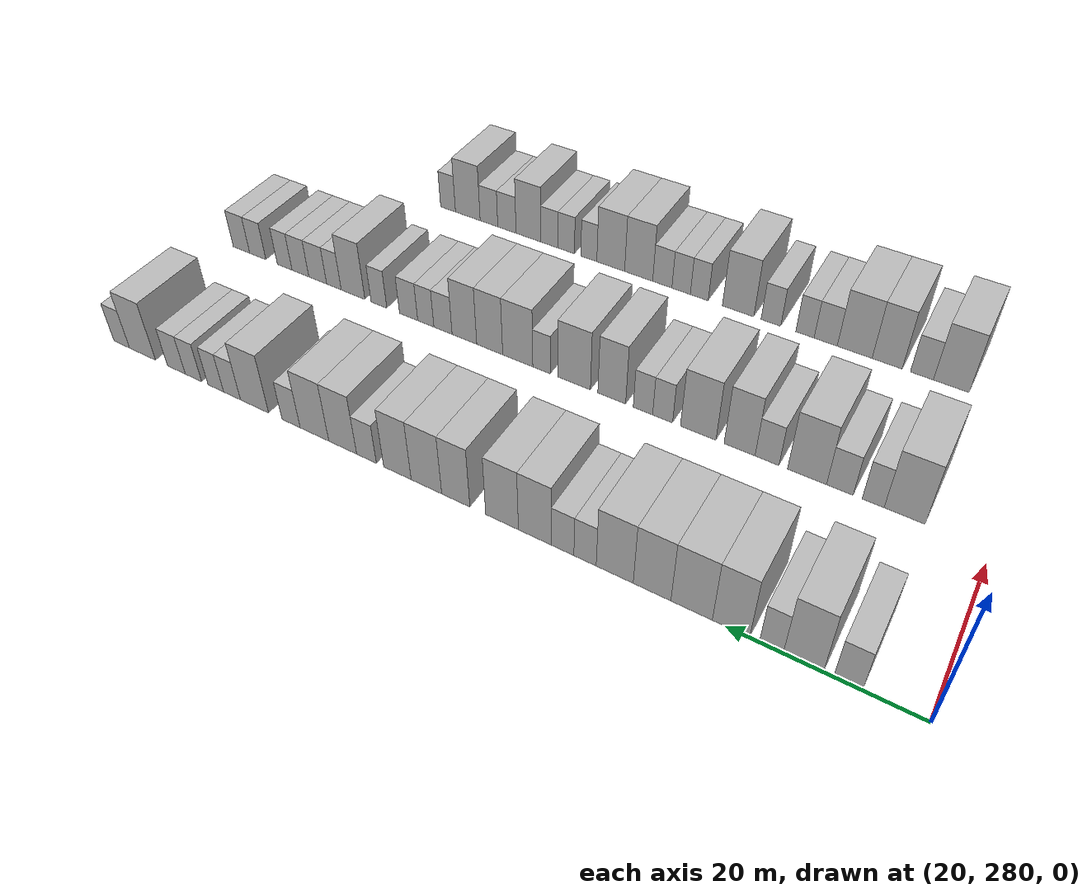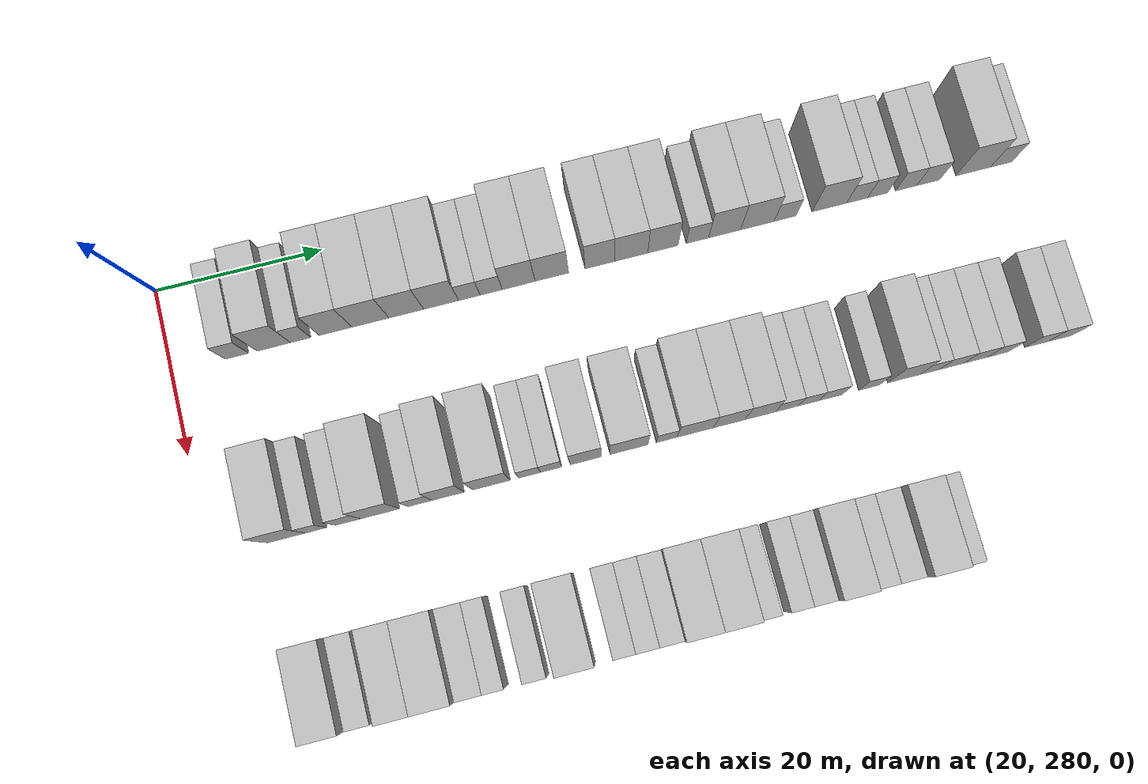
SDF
<sdf version="1.6">
 <world name="default">
  <model name="building_173">
   <static>1</static>
   <pose>25.0000 287.7490 0 0.000000 0.000000 0.000000</pose>
   <link name="link">
    <pose>0 0 3.00 0 0 0</pose>
    <collision name="collision"><geometry><box><size>10.0000 2.7724 6.0000</size></box></geometry></collision>
    <visual name="visual">
     <cast_shadows>0</cast_shadows>
     <geometry><box><size>10.0000 2.7724 6.0000</size></box></geometry>
     <material>
      <script>
       <uri>model://HANNAS_wall/materials/scripts</uri>
       <uri>model://HANNAS_wall/materials/textures</uri>
       <name>vrc/HANNAS_wall</name>
      </script>
     </material>
    </visual>
   </link>
  </model>
  <model name="building_174">
   <static>1</static>
   <pose>25.0000 292.1270 0 0.000000 0.000000 0.000000</pose>
   <link name="link">
    <pose>0 0 4.50 0 0 0</pose>
    <collision name="collision"><geometry><box><size>10.0000 3.9837 9.0000</size></box></geometry></collision>
    <visual name="visual">
     <cast_shadows>0</cast_shadows>
     <geometry><box><size>10.0000 3.9837 9.0000</size></box></geometry>
     <material>
      <script>
       <uri>model://HANNAS_wall/materials/scripts</uri>
       <uri>model://HANNAS_wall/materials/textures</uri>
       <name>vrc/HANNAS_wall</name>
      </script>
     </material>
    </visual>
   </link>
  </model>
  <model name="building_175">
   <static>1</static>
   <pose>25.0000 295.3282 0 0.000000 0.000000 0.000000</pose>
   <link name="link">
    <pose>0 0 3.00 0 0 0</pose>
    <collision name="collision"><geometry><box><size>10.0000 2.4185 6.0000</size></box></geometry></collision>
    <visual name="visual">
     <cast_shadows>0</cast_shadows>
     <geometry><box><size>10.0000 2.4185 6.0000</size></box></geometry>
     <material>
      <script>
       <uri>model://HANNAS_wall/materials/scripts</uri>
       <uri>model://HANNAS_wall/materials/textures</uri>
       <name>vrc/HANNAS_wall</name>
      </script>
     </material>
    </visual>
   </link>
  </model>
  <model name="building_176">
   <static>1</static>
   <pose>25.0000 299.4831 0 0.000000 0.000000 0.000000</pose>
   <link name="link">
    <pose>0 0 4.50 0 0 0</pose>
    <collision name="collision"><geometry><box><size>10.0000 3.8915 9.0000</size></box></geometry></collision>
    <visual name="visual">
     <cast_shadows>0</cast_shadows>
     <geometry><box><size>10.0000 3.8915 9.0000</size></box></geometry>
     <material>
      <script>
       <uri>model://HANNAS_wall/materials/scripts</uri>
       <uri>model://HANNAS_wall/materials/textures</uri>
       <name>vrc/HANNAS_wall</name>
      </script>
     </material>
    </visual>
   </link>
  </model>
  <model name="building_177">
   <static>1</static>
   <pose>25.0000 303.6539 0 0.000000 0.000000 0.000000</pose>
   <link name="link">
    <pose>0 0 4.50 0 0 0</pose>
    <collision name="collision"><geometry><box><size>10.0000 4.4500 9.0000</size></box></geometry></collision>
    <visual name="visual">
     <cast_shadows>0</cast_shadows>
     <geometry><box><size>10.0000 4.4500 9.0000</size></box></geometry>
     <material>
      <script>
       <uri>model://HANNAS_wall/materials/scripts</uri>
       <uri>model://HANNAS_wall/materials/textures</uri>
       <name>vrc/HANNAS_wall</name>
      </script>
     </material>
    </visual>
   </link>
  </model>
  <model name="building_178">
   <static>1</static>
   <pose>25.0000 307.9587 0 0.000000 0.000000 0.000000</pose>
   <link name="link">
    <pose>0 0 4.50 0 0 0</pose>
    <collision name="collision"><geometry><box><size>10.0000 4.1596 9.0000</size></box></geometry></collision>
    <visual name="visual">
     <cast_shadows>0</cast_shadows>
     <geometry><box><size>10.0000 4.1596 9.0000</size></box></geometry>
     <material>
      <script>
       <uri>model://HANNAS_wall/materials/scripts</uri>
       <uri>model://HANNAS_wall/materials/textures</uri>
       <name>vrc/HANNAS_wall</name>
      </script>
     </material>
    </visual>
   </link>
  </model>
  <model name="building_179">
   <static>1</static>
   <pose>25.0000 312.1446 0 0.000000 0.000000 0.000000</pose>
   <link name="link">
    <pose>0 0 4.50 0 0 0</pose>
    <collision name="collision"><geometry><box><size>10.0000 4.2123 9.0000</size></box></geometry></collision>
    <visual name="visual">
     <cast_shadows>0</cast_shadows>
     <geometry><box><size>10.0000 4.2123 9.0000</size></box></geometry>
     <material>
      <script>
       <uri>model://HANNAS_wall/materials/scripts</uri>
       <uri>model://HANNAS_wall/materials/textures</uri>
       <name>vrc/HANNAS_wall</name>
      </script>
     </material>
    </visual>
   </link>
  </model>
  <model name="building_180">
   <static>1</static>
   <pose>25.0000 315.5453 0 0.000000 0.000000 0.000000</pose>
   <link name="link">
    <pose>0 0 3.00 0 0 0</pose>
    <collision name="collision"><geometry><box><size>10.0000 2.5890 6.0000</size></box></geometry></collision>
    <visual name="visual">
     <cast_shadows>0</cast_shadows>
     <geometry><box><size>10.0000 2.5890 6.0000</size></box></geometry>
     <material>
      <script>
       <uri>model://HANNAS_wall/materials/scripts</uri>
       <uri>model://HANNAS_wall/materials/textures</uri>
       <name>vrc/HANNAS_wall</name>
      </script>
     </material>
    </visual>
   </link>
  </model>
  <model name="building_181">
   <static>1</static>
   <pose>25.0000 318.1744 0 0.000000 0.000000 0.000000</pose>
   <link name="link">
    <pose>0 0 3.00 0 0 0</pose>
    <collision name="collision"><geometry><box><size>10.0000 2.6693 6.0000</size></box></geometry></collision>
    <visual name="visual">
     <cast_shadows>0</cast_shadows>
     <geometry><box><size>10.0000 2.6693 6.0000</size></box></geometry>
     <material>
      <script>
       <uri>model://HANNAS_wall/materials/scripts</uri>
       <uri>model://HANNAS_wall/materials/textures</uri>
       <name>vrc/HANNAS_wall</name>
      </script>
     </material>
    </visual>
   </link>
  </model>
  <model name="building_182">
   <static>1</static>
   <pose>25.0000 321.4915 0 0.000000 0.000000 0.000000</pose>
   <link name="link">
    <pose>0 0 4.50 0 0 0</pose>
    <collision name="collision"><geometry><box><size>10.0000 3.9650 9.0000</size></box></geometry></collision>
    <visual name="visual">
     <cast_shadows>0</cast_shadows>
     <geometry><box><size>10.0000 3.9650 9.0000</size></box></geometry>
     <material>
      <script>
       <uri>model://HANNAS_wall/materials/scripts</uri>
       <uri>model://HANNAS_wall/materials/textures</uri>
       <name>vrc/HANNAS_wall</name>
      </script>
     </material>
    </visual>
   </link>
  </model>
  <model name="building_183">
   <static>1</static>
   <pose>25.0000 325.5005 0 0.000000 0.000000 0.000000</pose>
   <link name="link">
    <pose>0 0 4.50 0 0 0</pose>
    <collision name="collision"><geometry><box><size>10.0000 4.0528 9.0000</size></box></geometry></collision>
    <visual name="visual">
     <cast_shadows>0</cast_shadows>
     <geometry><box><size>10.0000 4.0528 9.0000</size></box></geometry>
     <material>
      <script>
       <uri>model://HANNAS_wall/materials/scripts</uri>
       <uri>model://HANNAS_wall/materials/textures</uri>
       <name>vrc/HANNAS_wall</name>
      </script>
     </material>
    </visual>
   </link>
  </model>
  <model name="building_184">
   <static>1</static>
   <pose>25.0000 331.3357 0 0.000000 0.000000 0.000000</pose>
   <link name="link">
    <pose>0 0 4.50 0 0 0</pose>
    <collision name="collision"><geometry><box><size>10.0000 3.6177 9.0000</size></box></geometry></collision>
    <visual name="visual">
     <cast_shadows>0</cast_shadows>
     <geometry><box><size>10.0000 3.6177 9.0000</size></box></geometry>
     <material>
      <script>
       <uri>model://HANNAS_wall/materials/scripts</uri>
       <uri>model://HANNAS_wall/materials/textures</uri>
       <name>vrc/HANNAS_wall</name>
      </script>
     </material>
    </visual>
   </link>
  </model>
  <model name="building_185">
   <static>1</static>
   <pose>25.0000 335.1584 0 0.000000 0.000000 0.000000</pose>
   <link name="link">
    <pose>0 0 4.50 0 0 0</pose>
    <collision name="collision"><geometry><box><size>10.0000 4.0276 9.0000</size></box></geometry></collision>
    <visual name="visual">
     <cast_shadows>0</cast_shadows>
     <geometry><box><size>10.0000 4.0276 9.0000</size></box></geometry>
     <material>
      <script>
       <uri>model://HANNAS_wall/materials/scripts</uri>
       <uri>model://HANNAS_wall/materials/textures</uri>
       <name>vrc/HANNAS_wall</name>
      </script>
     </material>
    </visual>
   </link>
  </model>
  <model name="building_186">
   <static>1</static>
   <pose>25.0000 339.0192 0 0.000000 0.000000 0.000000</pose>
   <link name="link">
    <pose>0 0 4.50 0 0 0</pose>
    <collision name="collision"><geometry><box><size>10.0000 3.6942 9.0000</size></box></geometry></collision>
    <visual name="visual">
     <cast_shadows>0</cast_shadows>
     <geometry><box><size>10.0000 3.6942 9.0000</size></box></geometry>
     <material>
      <script>
       <uri>model://HANNAS_wall/materials/scripts</uri>
       <uri>model://HANNAS_wall/materials/textures</uri>
       <name>vrc/HANNAS_wall</name>
      </script>
     </material>
    </visual>
   </link>
  </model>
  <model name="building_187">
   <static>1</static>
   <pose>25.0000 343.2326 0 0.000000 0.000000 0.000000</pose>
   <link name="link">
    <pose>0 0 3.00 0 0 0</pose>
    <collision name="collision"><geometry><box><size>10.0000 2.7326 6.0000</size></box></geometry></collision>
    <visual name="visual">
     <cast_shadows>0</cast_shadows>
     <geometry><box><size>10.0000 2.7326 6.0000</size></box></geometry>
     <material>
      <script>
       <uri>model://HANNAS_wall/materials/scripts</uri>
       <uri>model://HANNAS_wall/materials/textures</uri>
       <name>vrc/HANNAS_wall</name>
      </script>
     </material>
    </visual>
   </link>
  </model>
  <model name="building_188">
   <static>1</static>
   <pose>25.0000 346.5632 0 0.000000 0.000000 0.000000</pose>
   <link name="link">
    <pose>0 0 4.50 0 0 0</pose>
    <collision name="collision"><geometry><box><size>10.0000 3.9285 9.0000</size></box></geometry></collision>
    <visual name="visual">
     <cast_shadows>0</cast_shadows>
     <geometry><box><size>10.0000 3.9285 9.0000</size></box></geometry>
     <material>
      <script>
       <uri>model://HANNAS_wall/materials/scripts</uri>
       <uri>model://HANNAS_wall/materials/textures</uri>
       <name>vrc/HANNAS_wall</name>
      </script>
     </material>
    </visual>
   </link>
  </model>
  <model name="building_189">
   <static>1</static>
   <pose>25.0000 350.5946 0 0.000000 0.000000 0.000000</pose>
   <link name="link">
    <pose>0 0 4.50 0 0 0</pose>
    <collision name="collision"><geometry><box><size>10.0000 4.1343 9.0000</size></box></geometry></collision>
    <visual name="visual">
     <cast_shadows>0</cast_shadows>
     <geometry><box><size>10.0000 4.1343 9.0000</size></box></geometry>
     <material>
      <script>
       <uri>model://HANNAS_wall/materials/scripts</uri>
       <uri>model://HANNAS_wall/materials/textures</uri>
       <name>vrc/HANNAS_wall</name>
      </script>
     </material>
    </visual>
   </link>
  </model>
  <model name="building_190">
   <static>1</static>
   <pose>25.0000 353.9999 0 0.000000 0.000000 0.000000</pose>
   <link name="link">
    <pose>0 0 3.00 0 0 0</pose>
    <collision name="collision"><geometry><box><size>10.0000 2.6763 6.0000</size></box></geometry></collision>
    <visual name="visual">
     <cast_shadows>0</cast_shadows>
     <geometry><box><size>10.0000 2.6763 6.0000</size></box></geometry>
     <material>
      <script>
       <uri>model://HANNAS_wall/materials/scripts</uri>
       <uri>model://HANNAS_wall/materials/textures</uri>
       <name>vrc/HANNAS_wall</name>
      </script>
     </material>
    </visual>
   </link>
  </model>
  <model name="building_191">
   <static>1</static>
   <pose>25.0000 359.4760 0 0.000000 0.000000 0.000000</pose>
   <link name="link">
    <pose>0 0 4.50 0 0 0</pose>
    <collision name="collision"><geometry><box><size>10.0000 4.2760 9.0000</size></box></geometry></collision>
    <visual name="visual">
     <cast_shadows>0</cast_shadows>
     <geometry><box><size>10.0000 4.2760 9.0000</size></box></geometry>
     <material>
      <script>
       <uri>model://HANNAS_wall/materials/scripts</uri>
       <uri>model://HANNAS_wall/materials/textures</uri>
       <name>vrc/HANNAS_wall</name>
      </script>
     </material>
    </visual>
   </link>
  </model>
  <model name="building_192">
   <static>1</static>
   <pose>25.0000 362.9268 0 0.000000 0.000000 0.000000</pose>
   <link name="link">
    <pose>0 0 3.00 0 0 0</pose>
    <collision name="collision"><geometry><box><size>10.0000 2.6256 6.0000</size></box></geometry></collision>
    <visual name="visual">
     <cast_shadows>0</cast_shadows>
     <geometry><box><size>10.0000 2.6256 6.0000</size></box></geometry>
     <material>
      <script>
       <uri>model://HANNAS_wall/materials/scripts</uri>
       <uri>model://HANNAS_wall/materials/textures</uri>
       <name>vrc/HANNAS_wall</name>
      </script>
     </material>
    </visual>
   </link>
  </model>
  <model name="building_193">
   <static>1</static>
   <pose>25.0000 365.4707 0 0.000000 0.000000 0.000000</pose>
   <link name="link">
    <pose>0 0 3.00 0 0 0</pose>
    <collision name="collision"><geometry><box><size>10.0000 2.4622 6.0000</size></box></geometry></collision>
    <visual name="visual">
     <cast_shadows>0</cast_shadows>
     <geometry><box><size>10.0000 2.4622 6.0000</size></box></geometry>
     <material>
      <script>
       <uri>model://HANNAS_wall/materials/scripts</uri>
       <uri>model://HANNAS_wall/materials/textures</uri>
       <name>vrc/HANNAS_wall</name>
      </script>
     </material>
    </visual>
   </link>
  </model>
  <model name="building_194">
   <static>1</static>
   <pose>25.0000 369.0168 0 0.000000 0.000000 0.000000</pose>
   <link name="link">
    <pose>0 0 3.00 0 0 0</pose>
    <collision name="collision"><geometry><box><size>10.0000 2.6300 6.0000</size></box></geometry></collision>
    <visual name="visual">
     <cast_shadows>0</cast_shadows>
     <geometry><box><size>10.0000 2.6300 6.0000</size></box></geometry>
     <material>
      <script>
       <uri>model://HANNAS_wall/materials/scripts</uri>
       <uri>model://HANNAS_wall/materials/textures</uri>
       <name>vrc/HANNAS_wall</name>
      </script>
     </material>
    </visual>
   </link>
  </model>
  <model name="building_195">
   <static>1</static>
   <pose>25.0000 371.7718 0 0.000000 0.000000 0.000000</pose>
   <link name="link">
    <pose>0 0 3.00 0 0 0</pose>
    <collision name="collision"><geometry><box><size>10.0000 2.8800 6.0000</size></box></geometry></collision>
    <visual name="visual">
     <cast_shadows>0</cast_shadows>
     <geometry><box><size>10.0000 2.8800 6.0000</size></box></geometry>
     <material>
      <script>
       <uri>model://HANNAS_wall/materials/scripts</uri>
       <uri>model://HANNAS_wall/materials/textures</uri>
       <name>vrc/HANNAS_wall</name>
      </script>
     </material>
    </visual>
   </link>
  </model>
  <model name="building_196">
   <static>1</static>
   <pose>25.0000 377.3931 0 0.000000 0.000000 0.000000</pose>
   <link name="link">
    <pose>0 0 4.50 0 0 0</pose>
    <collision name="collision"><geometry><box><size>10.0000 4.3626 9.0000</size></box></geometry></collision>
    <visual name="visual">
     <cast_shadows>0</cast_shadows>
     <geometry><box><size>10.0000 4.3626 9.0000</size></box></geometry>
     <material>
      <script>
       <uri>model://HANNAS_wall/materials/scripts</uri>
       <uri>model://HANNAS_wall/materials/textures</uri>
       <name>vrc/HANNAS_wall</name>
      </script>
     </material>
    </visual>
   </link>
  </model>
  <model name="building_197">
   <static>1</static>
   <pose>25.0000 380.9049 0 0.000000 0.000000 0.000000</pose>
   <link name="link">
    <pose>0 0 3.00 0 0 0</pose>
    <collision name="collision"><geometry><box><size>10.0000 2.6611 6.0000</size></box></geometry></collision>
    <visual name="visual">
     <cast_shadows>0</cast_shadows>
     <geometry><box><size>10.0000 2.6611 6.0000</size></box></geometry>
     <material>
      <script>
       <uri>model://HANNAS_wall/materials/scripts</uri>
       <uri>model://HANNAS_wall/materials/textures</uri>
       <name>vrc/HANNAS_wall</name>
      </script>
     </material>
    </visual>
   </link>
  </model>
  <model name="building_363">
   <static>1</static>
   <pose>47.0000 289.0571 0 0.000000 0.000000 0.000000</pose>
   <link name="link">
    <pose>0 0 4.50 0 0 0</pose>
    <collision name="collision"><geometry><box><size>10.0000 4.4173 9.0000</size></box></geometry></collision>
    <visual name="visual">
     <cast_shadows>0</cast_shadows>
     <geometry><box><size>10.0000 4.4173 9.0000</size></box></geometry>
     <material>
      <script>
       <uri>model://HANNAS_wall/materials/scripts</uri>
       <uri>model://HANNAS_wall/materials/textures</uri>
       <name>vrc/HANNAS_wall</name>
      </script>
     </material>
    </visual>
   </link>
  </model>
  <model name="building_364">
   <static>1</static>
   <pose>47.0000 292.4740 0 0.000000 0.000000 0.000000</pose>
   <link name="link">
    <pose>0 0 3.00 0 0 0</pose>
    <collision name="collision"><geometry><box><size>10.0000 2.4165 6.0000</size></box></geometry></collision>
    <visual name="visual">
     <cast_shadows>0</cast_shadows>
     <geometry><box><size>10.0000 2.4165 6.0000</size></box></geometry>
     <material>
      <script>
       <uri>model://HANNAS_wall/materials/scripts</uri>
       <uri>model://HANNAS_wall/materials/textures</uri>
       <name>vrc/HANNAS_wall</name>
      </script>
     </material>
    </visual>
   </link>
  </model>
  <model name="building_365">
   <static>1</static>
   <pose>47.0000 296.1783 0 0.000000 0.000000 0.000000</pose>
   <link name="link">
    <pose>0 0 3.00 0 0 0</pose>
    <collision name="collision"><geometry><box><size>10.0000 2.9923 6.0000</size></box></geometry></collision>
    <visual name="visual">
     <cast_shadows>0</cast_shadows>
     <geometry><box><size>10.0000 2.9923 6.0000</size></box></geometry>
     <material>
      <script>
       <uri>model://HANNAS_wall/materials/scripts</uri>
       <uri>model://HANNAS_wall/materials/textures</uri>
       <name>vrc/HANNAS_wall</name>
      </script>
     </material>
    </visual>
   </link>
  </model>
  <model name="building_366">
   <static>1</static>
   <pose>47.0000 299.9164 0 0.000000 0.000000 0.000000</pose>
   <link name="link">
    <pose>0 0 4.50 0 0 0</pose>
    <collision name="collision"><geometry><box><size>10.0000 4.4838 9.0000</size></box></geometry></collision>
    <visual name="visual">
     <cast_shadows>0</cast_shadows>
     <geometry><box><size>10.0000 4.4838 9.0000</size></box></geometry>
     <material>
      <script>
       <uri>model://HANNAS_wall/materials/scripts</uri>
       <uri>model://HANNAS_wall/materials/textures</uri>
       <name>vrc/HANNAS_wall</name>
      </script>
     </material>
    </visual>
   </link>
  </model>
  <model name="building_367">
   <static>1</static>
   <pose>47.0000 304.5761 0 0.000000 0.000000 0.000000</pose>
   <link name="link">
    <pose>0 0 3.00 0 0 0</pose>
    <collision name="collision"><geometry><box><size>10.0000 2.8357 6.0000</size></box></geometry></collision>
    <visual name="visual">
     <cast_shadows>0</cast_shadows>
     <geometry><box><size>10.0000 2.8357 6.0000</size></box></geometry>
     <material>
      <script>
       <uri>model://HANNAS_wall/materials/scripts</uri>
       <uri>model://HANNAS_wall/materials/textures</uri>
       <name>vrc/HANNAS_wall</name>
      </script>
     </material>
    </visual>
   </link>
  </model>
  <model name="building_368">
   <static>1</static>
   <pose>47.0000 307.8629 0 0.000000 0.000000 0.000000</pose>
   <link name="link">
    <pose>0 0 4.50 0 0 0</pose>
    <collision name="collision"><geometry><box><size>10.0000 3.7379 9.0000</size></box></geometry></collision>
    <visual name="visual">
     <cast_shadows>0</cast_shadows>
     <geometry><box><size>10.0000 3.7379 9.0000</size></box></geometry>
     <material>
      <script>
       <uri>model://HANNAS_wall/materials/scripts</uri>
       <uri>model://HANNAS_wall/materials/textures</uri>
       <name>vrc/HANNAS_wall</name>
      </script>
     </material>
    </visual>
   </link>
  </model>
  <model name="building_369">
   <static>1</static>
   <pose>47.0000 312.9374 0 0.000000 0.000000 0.000000</pose>
   <link name="link">
    <pose>0 0 4.50 0 0 0</pose>
    <collision name="collision"><geometry><box><size>10.0000 4.4110 9.0000</size></box></geometry></collision>
    <visual name="visual">
     <cast_shadows>0</cast_shadows>
     <geometry><box><size>10.0000 4.4110 9.0000</size></box></geometry>
     <material>
      <script>
       <uri>model://HANNAS_wall/materials/scripts</uri>
       <uri>model://HANNAS_wall/materials/textures</uri>
       <name>vrc/HANNAS_wall</name>
      </script>
     </material>
    </visual>
   </link>
  </model>
  <model name="building_370">
   <static>1</static>
   <pose>47.0000 317.4157 0 0.000000 0.000000 0.000000</pose>
   <link name="link">
    <pose>0 0 3.00 0 0 0</pose>
    <collision name="collision"><geometry><box><size>10.0000 2.5456 6.0000</size></box></geometry></collision>
    <visual name="visual">
     <cast_shadows>0</cast_shadows>
     <geometry><box><size>10.0000 2.5456 6.0000</size></box></geometry>
     <material>
      <script>
       <uri>model://HANNAS_wall/materials/scripts</uri>
       <uri>model://HANNAS_wall/materials/textures</uri>
       <name>vrc/HANNAS_wall</name>
      </script>
     </material>
    </visual>
   </link>
  </model>
  <model name="building_371">
   <static>1</static>
   <pose>47.0000 319.9426 0 0.000000 0.000000 0.000000</pose>
   <link name="link">
    <pose>0 0 3.00 0 0 0</pose>
    <collision name="collision"><geometry><box><size>10.0000 2.5083 6.0000</size></box></geometry></collision>
    <visual name="visual">
     <cast_shadows>0</cast_shadows>
     <geometry><box><size>10.0000 2.5083 6.0000</size></box></geometry>
     <material>
      <script>
       <uri>model://HANNAS_wall/materials/scripts</uri>
       <uri>model://HANNAS_wall/materials/textures</uri>
       <name>vrc/HANNAS_wall</name>
      </script>
     </material>
    </visual>
   </link>
  </model>
  <model name="building_372">
   <static>1</static>
   <pose>47.0000 324.0380 0 0.000000 0.000000 0.000000</pose>
   <link name="link">
    <pose>0 0 4.50 0 0 0</pose>
    <collision name="collision"><geometry><box><size>10.0000 3.6825 9.0000</size></box></geometry></collision>
    <visual name="visual">
     <cast_shadows>0</cast_shadows>
     <geometry><box><size>10.0000 3.6825 9.0000</size></box></geometry>
     <material>
      <script>
       <uri>model://HANNAS_wall/materials/scripts</uri>
       <uri>model://HANNAS_wall/materials/textures</uri>
       <name>vrc/HANNAS_wall</name>
      </script>
     </material>
    </visual>
   </link>
  </model>
  <model name="building_373">
   <static>1</static>
   <pose>47.0000 329.1186 0 0.000000 0.000000 0.000000</pose>
   <link name="link">
    <pose>0 0 4.50 0 0 0</pose>
    <collision name="collision"><geometry><box><size>10.0000 4.4787 9.0000</size></box></geometry></collision>
    <visual name="visual">
     <cast_shadows>0</cast_shadows>
     <geometry><box><size>10.0000 4.4787 9.0000</size></box></geometry>
     <material>
      <script>
       <uri>model://HANNAS_wall/materials/scripts</uri>
       <uri>model://HANNAS_wall/materials/textures</uri>
       <name>vrc/HANNAS_wall</name>
      </script>
     </material>
    </visual>
   </link>
  </model>
  <model name="building_374">
   <static>1</static>
   <pose>47.0000 333.5838 0 0.000000 0.000000 0.000000</pose>
   <link name="link">
    <pose>0 0 3.00 0 0 0</pose>
    <collision name="collision"><geometry><box><size>10.0000 2.4517 6.0000</size></box></geometry></collision>
    <visual name="visual">
     <cast_shadows>0</cast_shadows>
     <geometry><box><size>10.0000 2.4517 6.0000</size></box></geometry>
     <material>
      <script>
       <uri>model://HANNAS_wall/materials/scripts</uri>
       <uri>model://HANNAS_wall/materials/textures</uri>
       <name>vrc/HANNAS_wall</name>
      </script>
     </material>
    </visual>
   </link>
  </model>
  <model name="building_375">
   <static>1</static>
   <pose>47.0000 336.9564 0 0.000000 0.000000 0.000000</pose>
   <link name="link">
    <pose>0 0 4.50 0 0 0</pose>
    <collision name="collision"><geometry><box><size>10.0000 4.2934 9.0000</size></box></geometry></collision>
    <visual name="visual">
     <cast_shadows>0</cast_shadows>
     <geometry><box><size>10.0000 4.2934 9.0000</size></box></geometry>
     <material>
      <script>
       <uri>model://HANNAS_wall/materials/scripts</uri>
       <uri>model://HANNAS_wall/materials/textures</uri>
       <name>vrc/HANNAS_wall</name>
      </script>
     </material>
    </visual>
   </link>
  </model>
  <model name="building_376">
   <static>1</static>
   <pose>47.0000 340.9928 0 0.000000 0.000000 0.000000</pose>
   <link name="link">
    <pose>0 0 4.50 0 0 0</pose>
    <collision name="collision"><geometry><box><size>10.0000 3.7793 9.0000</size></box></geometry></collision>
    <visual name="visual">
     <cast_shadows>0</cast_shadows>
     <geometry><box><size>10.0000 3.7793 9.0000</size></box></geometry>
     <material>
      <script>
       <uri>model://HANNAS_wall/materials/scripts</uri>
       <uri>model://HANNAS_wall/materials/textures</uri>
       <name>vrc/HANNAS_wall</name>
      </script>
     </material>
    </visual>
   </link>
  </model>
  <model name="building_377">
   <static>1</static>
   <pose>47.0000 344.7109 0 0.000000 0.000000 0.000000</pose>
   <link name="link">
    <pose>0 0 4.50 0 0 0</pose>
    <collision name="collision"><geometry><box><size>10.0000 3.6570 9.0000</size></box></geometry></collision>
    <visual name="visual">
     <cast_shadows>0</cast_shadows>
     <geometry><box><size>10.0000 3.6570 9.0000</size></box></geometry>
     <material>
      <script>
       <uri>model://HANNAS_wall/materials/scripts</uri>
       <uri>model://HANNAS_wall/materials/textures</uri>
       <name>vrc/HANNAS_wall</name>
      </script>
     </material>
    </visual>
   </link>
  </model>
  <model name="building_378">
   <static>1</static>
   <pose>47.0000 347.9187 0 0.000000 0.000000 0.000000</pose>
   <link name="link">
    <pose>0 0 3.00 0 0 0</pose>
    <collision name="collision"><geometry><box><size>10.0000 2.7586 6.0000</size></box></geometry></collision>
    <visual name="visual">
     <cast_shadows>0</cast_shadows>
     <geometry><box><size>10.0000 2.7586 6.0000</size></box></geometry>
     <material>
      <script>
       <uri>model://HANNAS_wall/materials/scripts</uri>
       <uri>model://HANNAS_wall/materials/textures</uri>
       <name>vrc/HANNAS_wall</name>
      </script>
     </material>
    </visual>
   </link>
  </model>
  <model name="building_379">
   <static>1</static>
   <pose>47.0000 350.5357 0 0.000000 0.000000 0.000000</pose>
   <link name="link">
    <pose>0 0 3.00 0 0 0</pose>
    <collision name="collision"><geometry><box><size>10.0000 2.4753 6.0000</size></box></geometry></collision>
    <visual name="visual">
     <cast_shadows>0</cast_shadows>
     <geometry><box><size>10.0000 2.4753 6.0000</size></box></geometry>
     <material>
      <script>
       <uri>model://HANNAS_wall/materials/scripts</uri>
       <uri>model://HANNAS_wall/materials/textures</uri>
       <name>vrc/HANNAS_wall</name>
      </script>
     </material>
    </visual>
   </link>
  </model>
  <model name="building_380">
   <static>1</static>
   <pose>47.0000 353.1901 0 0.000000 0.000000 0.000000</pose>
   <link name="link">
    <pose>0 0 3.00 0 0 0</pose>
    <collision name="collision"><geometry><box><size>10.0000 2.8335 6.0000</size></box></geometry></collision>
    <visual name="visual">
     <cast_shadows>0</cast_shadows>
     <geometry><box><size>10.0000 2.8335 6.0000</size></box></geometry>
     <material>
      <script>
       <uri>model://HANNAS_wall/materials/scripts</uri>
       <uri>model://HANNAS_wall/materials/textures</uri>
       <name>vrc/HANNAS_wall</name>
      </script>
     </material>
    </visual>
   </link>
  </model>
  <model name="building_381">
   <static>1</static>
   <pose>47.0000 357.8577 0 0.000000 0.000000 0.000000</pose>
   <link name="link">
    <pose>0 0 3.00 0 0 0</pose>
    <collision name="collision"><geometry><box><size>10.0000 2.5016 6.0000</size></box></geometry></collision>
    <visual name="visual">
     <cast_shadows>0</cast_shadows>
     <geometry><box><size>10.0000 2.5016 6.0000</size></box></geometry>
     <material>
      <script>
       <uri>model://HANNAS_wall/materials/scripts</uri>
       <uri>model://HANNAS_wall/materials/textures</uri>
       <name>vrc/HANNAS_wall</name>
      </script>
     </material>
    </visual>
   </link>
  </model>
  <model name="building_382">
   <static>1</static>
   <pose>47.0000 362.0371 0 0.000000 0.000000 0.000000</pose>
   <link name="link">
    <pose>0 0 4.50 0 0 0</pose>
    <collision name="collision"><geometry><box><size>10.0000 3.8573 9.0000</size></box></geometry></collision>
    <visual name="visual">
     <cast_shadows>0</cast_shadows>
     <geometry><box><size>10.0000 3.8573 9.0000</size></box></geometry>
     <material>
      <script>
       <uri>model://HANNAS_wall/materials/scripts</uri>
       <uri>model://HANNAS_wall/materials/textures</uri>
       <name>vrc/HANNAS_wall</name>
      </script>
     </material>
    </visual>
   </link>
  </model>
  <model name="building_383">
   <static>1</static>
   <pose>47.0000 365.1715 0 0.000000 0.000000 0.000000</pose>
   <link name="link">
    <pose>0 0 3.00 0 0 0</pose>
    <collision name="collision"><geometry><box><size>10.0000 2.4115 6.0000</size></box></geometry></collision>
    <visual name="visual">
     <cast_shadows>0</cast_shadows>
     <geometry><box><size>10.0000 2.4115 6.0000</size></box></geometry>
     <material>
      <script>
       <uri>model://HANNAS_wall/materials/scripts</uri>
       <uri>model://HANNAS_wall/materials/textures</uri>
       <name>vrc/HANNAS_wall</name>
      </script>
     </material>
    </visual>
   </link>
  </model>
  <model name="building_384">
   <static>1</static>
   <pose>47.0000 367.8704 0 0.000000 0.000000 0.000000</pose>
   <link name="link">
    <pose>0 0 3.00 0 0 0</pose>
    <collision name="collision"><geometry><box><size>10.0000 2.9863 6.0000</size></box></geometry></collision>
    <visual name="visual">
     <cast_shadows>0</cast_shadows>
     <geometry><box><size>10.0000 2.9863 6.0000</size></box></geometry>
     <material>
      <script>
       <uri>model://HANNAS_wall/materials/scripts</uri>
       <uri>model://HANNAS_wall/materials/textures</uri>
       <name>vrc/HANNAS_wall</name>
      </script>
     </material>
    </visual>
   </link>
  </model>
  <model name="building_385">
   <static>1</static>
   <pose>47.0000 370.7928 0 0.000000 0.000000 0.000000</pose>
   <link name="link">
    <pose>0 0 3.00 0 0 0</pose>
    <collision name="collision"><geometry><box><size>10.0000 2.8587 6.0000</size></box></geometry></collision>
    <visual name="visual">
     <cast_shadows>0</cast_shadows>
     <geometry><box><size>10.0000 2.8587 6.0000</size></box></geometry>
     <material>
      <script>
       <uri>model://HANNAS_wall/materials/scripts</uri>
       <uri>model://HANNAS_wall/materials/textures</uri>
       <name>vrc/HANNAS_wall</name>
      </script>
     </material>
    </visual>
   </link>
  </model>
  <model name="building_386">
   <static>1</static>
   <pose>47.0000 373.4910 0 0.000000 0.000000 0.000000</pose>
   <link name="link">
    <pose>0 0 3.00 0 0 0</pose>
    <collision name="collision"><geometry><box><size>10.0000 2.5376 6.0000</size></box></geometry></collision>
    <visual name="visual">
     <cast_shadows>0</cast_shadows>
     <geometry><box><size>10.0000 2.5376 6.0000</size></box></geometry>
     <material>
      <script>
       <uri>model://HANNAS_wall/materials/scripts</uri>
       <uri>model://HANNAS_wall/materials/textures</uri>
       <name>vrc/HANNAS_wall</name>
      </script>
     </material>
    </visual>
   </link>
  </model>
  <model name="building_387">
   <static>1</static>
   <pose>47.0000 378.1855 0 0.000000 0.000000 0.000000</pose>
   <link name="link">
    <pose>0 0 3.00 0 0 0</pose>
    <collision name="collision"><geometry><box><size>10.0000 2.8514 6.0000</size></box></geometry></collision>
    <visual name="visual">
     <cast_shadows>0</cast_shadows>
     <geometry><box><size>10.0000 2.8514 6.0000</size></box></geometry>
     <material>
      <script>
       <uri>model://HANNAS_wall/materials/scripts</uri>
       <uri>model://HANNAS_wall/materials/textures</uri>
       <name>vrc/HANNAS_wall</name>
      </script>
     </material>
    </visual>
   </link>
  </model>
  <model name="building_388">
   <static>1</static>
   <pose>47.0000 381.0844 0 0.000000 0.000000 0.000000</pose>
   <link name="link">
    <pose>0 0 3.00 0 0 0</pose>
    <collision name="collision"><geometry><box><size>10.0000 2.9464 6.0000</size></box></geometry></collision>
    <visual name="visual">
     <cast_shadows>0</cast_shadows>
     <geometry><box><size>10.0000 2.9464 6.0000</size></box></geometry>
     <material>
      <script>
       <uri>model://HANNAS_wall/materials/scripts</uri>
       <uri>model://HANNAS_wall/materials/textures</uri>
       <name>vrc/HANNAS_wall</name>
      </script>
     </material>
    </visual>
   </link>
  </model>
  <model name="building_559">
   <static>1</static>
   <pose>69.0000 290.0366 0 0.000000 0.000000 0.000000</pose>
   <link name="link">
    <pose>0 0 4.50 0 0 0</pose>
    <collision name="collision"><geometry><box><size>10.0000 4.2620 9.0000</size></box></geometry></collision>
    <visual name="visual">
     <cast_shadows>0</cast_shadows>
     <geometry><box><size>10.0000 4.2620 9.0000</size></box></geometry>
     <material>
      <script>
       <uri>model://HANNAS_wall/materials/scripts</uri>
       <uri>model://HANNAS_wall/materials/textures</uri>
       <name>vrc/HANNAS_wall</name>
      </script>
     </material>
    </visual>
   </link>
  </model>
  <model name="building_560">
   <static>1</static>
   <pose>69.0000 293.5657 0 0.000000 0.000000 0.000000</pose>
   <link name="link">
    <pose>0 0 3.00 0 0 0</pose>
    <collision name="collision"><geometry><box><size>10.0000 2.7963 6.0000</size></box></geometry></collision>
    <visual name="visual">
     <cast_shadows>0</cast_shadows>
     <geometry><box><size>10.0000 2.7963 6.0000</size></box></geometry>
     <material>
      <script>
       <uri>model://HANNAS_wall/materials/scripts</uri>
       <uri>model://HANNAS_wall/materials/textures</uri>
       <name>vrc/HANNAS_wall</name>
      </script>
     </material>
    </visual>
   </link>
  </model>
  <model name="building_561">
   <static>1</static>
   <pose>69.0000 297.8328 0 0.000000 0.000000 0.000000</pose>
   <link name="link">
    <pose>0 0 4.50 0 0 0</pose>
    <collision name="collision"><geometry><box><size>10.0000 3.7378 9.0000</size></box></geometry></collision>
    <visual name="visual">
     <cast_shadows>0</cast_shadows>
     <geometry><box><size>10.0000 3.7378 9.0000</size></box></geometry>
     <material>
      <script>
       <uri>model://HANNAS_wall/materials/scripts</uri>
       <uri>model://HANNAS_wall/materials/textures</uri>
       <name>vrc/HANNAS_wall</name>
      </script>
     </material>
    </visual>
   </link>
  </model>
  <model name="building_562">
   <static>1</static>
   <pose>69.0000 301.9177 0 0.000000 0.000000 0.000000</pose>
   <link name="link">
    <pose>0 0 4.50 0 0 0</pose>
    <collision name="collision"><geometry><box><size>10.0000 4.4318 9.0000</size></box></geometry></collision>
    <visual name="visual">
     <cast_shadows>0</cast_shadows>
     <geometry><box><size>10.0000 4.4318 9.0000</size></box></geometry>
     <material>
      <script>
       <uri>model://HANNAS_wall/materials/scripts</uri>
       <uri>model://HANNAS_wall/materials/textures</uri>
       <name>vrc/HANNAS_wall</name>
      </script>
     </material>
    </visual>
   </link>
  </model>
  <model name="building_563">
   <static>1</static>
   <pose>69.0000 305.6323 0 0.000000 0.000000 0.000000</pose>
   <link name="link">
    <pose>0 0 3.00 0 0 0</pose>
    <collision name="collision"><geometry><box><size>10.0000 2.9974 6.0000</size></box></geometry></collision>
    <visual name="visual">
     <cast_shadows>0</cast_shadows>
     <geometry><box><size>10.0000 2.9974 6.0000</size></box></geometry>
     <material>
      <script>
       <uri>model://HANNAS_wall/materials/scripts</uri>
       <uri>model://HANNAS_wall/materials/textures</uri>
       <name>vrc/HANNAS_wall</name>
      </script>
     </material>
    </visual>
   </link>
  </model>
  <model name="building_564">
   <static>1</static>
   <pose>69.0000 308.3360 0 0.000000 0.000000 0.000000</pose>
   <link name="link">
    <pose>0 0 3.00 0 0 0</pose>
    <collision name="collision"><geometry><box><size>10.0000 2.4102 6.0000</size></box></geometry></collision>
    <visual name="visual">
     <cast_shadows>0</cast_shadows>
     <geometry><box><size>10.0000 2.4102 6.0000</size></box></geometry>
     <material>
      <script>
       <uri>model://HANNAS_wall/materials/scripts</uri>
       <uri>model://HANNAS_wall/materials/textures</uri>
       <name>vrc/HANNAS_wall</name>
      </script>
     </material>
    </visual>
   </link>
  </model>
  <model name="building_565">
   <static>1</static>
   <pose>69.0000 312.8638 0 0.000000 0.000000 0.000000</pose>
   <link name="link">
    <pose>0 0 3.00 0 0 0</pose>
    <collision name="collision"><geometry><box><size>10.0000 2.6453 6.0000</size></box></geometry></collision>
    <visual name="visual">
     <cast_shadows>0</cast_shadows>
     <geometry><box><size>10.0000 2.6453 6.0000</size></box></geometry>
     <material>
      <script>
       <uri>model://HANNAS_wall/materials/scripts</uri>
       <uri>model://HANNAS_wall/materials/textures</uri>
       <name>vrc/HANNAS_wall</name>
      </script>
     </material>
    </visual>
   </link>
  </model>
  <model name="building_566">
   <static>1</static>
   <pose>69.0000 317.3484 0 0.000000 0.000000 0.000000</pose>
   <link name="link">
    <pose>0 0 4.50 0 0 0</pose>
    <collision name="collision"><geometry><box><size>10.0000 4.3240 9.0000</size></box></geometry></collision>
    <visual name="visual">
     <cast_shadows>0</cast_shadows>
     <geometry><box><size>10.0000 4.3240 9.0000</size></box></geometry>
     <material>
      <script>
       <uri>model://HANNAS_wall/materials/scripts</uri>
       <uri>model://HANNAS_wall/materials/textures</uri>
       <name>vrc/HANNAS_wall</name>
      </script>
     </material>
    </visual>
   </link>
  </model>
  <model name="building_567">
   <static>1</static>
   <pose>69.0000 322.7763 0 0.000000 0.000000 0.000000</pose>
   <link name="link">
    <pose>0 0 3.00 0 0 0</pose>
    <collision name="collision"><geometry><box><size>10.0000 2.5318 6.0000</size></box></geometry></collision>
    <visual name="visual">
     <cast_shadows>0</cast_shadows>
     <geometry><box><size>10.0000 2.5318 6.0000</size></box></geometry>
     <material>
      <script>
       <uri>model://HANNAS_wall/materials/scripts</uri>
       <uri>model://HANNAS_wall/materials/textures</uri>
       <name>vrc/HANNAS_wall</name>
      </script>
     </material>
    </visual>
   </link>
  </model>
  <model name="building_568">
   <static>1</static>
   <pose>69.0000 325.3644 0 0.000000 0.000000 0.000000</pose>
   <link name="link">
    <pose>0 0 3.00 0 0 0</pose>
    <collision name="collision"><geometry><box><size>10.0000 2.6445 6.0000</size></box></geometry></collision>
    <visual name="visual">
     <cast_shadows>0</cast_shadows>
     <geometry><box><size>10.0000 2.6445 6.0000</size></box></geometry>
     <material>
      <script>
       <uri>model://HANNAS_wall/materials/scripts</uri>
       <uri>model://HANNAS_wall/materials/textures</uri>
       <name>vrc/HANNAS_wall</name>
      </script>
     </material>
    </visual>
   </link>
  </model>
  <model name="building_569">
   <static>1</static>
   <pose>69.0000 328.0850 0 0.000000 0.000000 0.000000</pose>
   <link name="link">
    <pose>0 0 3.00 0 0 0</pose>
    <collision name="collision"><geometry><box><size>10.0000 2.7965 6.0000</size></box></geometry></collision>
    <visual name="visual">
     <cast_shadows>0</cast_shadows>
     <geometry><box><size>10.0000 2.7965 6.0000</size></box></geometry>
     <material>
      <script>
       <uri>model://HANNAS_wall/materials/scripts</uri>
       <uri>model://HANNAS_wall/materials/textures</uri>
       <name>vrc/HANNAS_wall</name>
      </script>
     </material>
    </visual>
   </link>
  </model>
  <model name="building_570">
   <static>1</static>
   <pose>69.0000 331.5661 0 0.000000 0.000000 0.000000</pose>
   <link name="link">
    <pose>0 0 4.50 0 0 0</pose>
    <collision name="collision"><geometry><box><size>10.0000 4.1657 9.0000</size></box></geometry></collision>
    <visual name="visual">
     <cast_shadows>0</cast_shadows>
     <geometry><box><size>10.0000 4.1657 9.0000</size></box></geometry>
     <material>
      <script>
       <uri>model://HANNAS_wall/materials/scripts</uri>
       <uri>model://HANNAS_wall/materials/textures</uri>
       <name>vrc/HANNAS_wall</name>
      </script>
     </material>
    </visual>
   </link>
  </model>
  <model name="building_571">
   <static>1</static>
   <pose>69.0000 335.7547 0 0.000000 0.000000 0.000000</pose>
   <link name="link">
    <pose>0 0 4.50 0 0 0</pose>
    <collision name="collision"><geometry><box><size>10.0000 4.2115 9.0000</size></box></geometry></collision>
    <visual name="visual">
     <cast_shadows>0</cast_shadows>
     <geometry><box><size>10.0000 4.2115 9.0000</size></box></geometry>
     <material>
      <script>
       <uri>model://HANNAS_wall/materials/scripts</uri>
       <uri>model://HANNAS_wall/materials/textures</uri>
       <name>vrc/HANNAS_wall</name>
      </script>
     </material>
    </visual>
   </link>
  </model>
  <model name="building_572">
   <static>1</static>
   <pose>69.0000 339.0856 0 0.000000 0.000000 0.000000</pose>
   <link name="link">
    <pose>0 0 3.00 0 0 0</pose>
    <collision name="collision"><geometry><box><size>10.0000 2.4504 6.0000</size></box></geometry></collision>
    <visual name="visual">
     <cast_shadows>0</cast_shadows>
     <geometry><box><size>10.0000 2.4504 6.0000</size></box></geometry>
     <material>
      <script>
       <uri>model://HANNAS_wall/materials/scripts</uri>
       <uri>model://HANNAS_wall/materials/textures</uri>
       <name>vrc/HANNAS_wall</name>
      </script>
     </material>
    </visual>
   </link>
  </model>
  <model name="building_573">
   <static>1</static>
   <pose>69.0000 342.5960 0 0.000000 0.000000 0.000000</pose>
   <link name="link">
    <pose>0 0 3.00 0 0 0</pose>
    <collision name="collision"><geometry><box><size>10.0000 2.5703 6.0000</size></box></geometry></collision>
    <visual name="visual">
     <cast_shadows>0</cast_shadows>
     <geometry><box><size>10.0000 2.5703 6.0000</size></box></geometry>
     <material>
      <script>
       <uri>model://HANNAS_wall/materials/scripts</uri>
       <uri>model://HANNAS_wall/materials/textures</uri>
       <name>vrc/HANNAS_wall</name>
      </script>
     </material>
    </visual>
   </link>
  </model>
  <model name="building_574">
   <static>1</static>
   <pose>69.0000 345.2325 0 0.000000 0.000000 0.000000</pose>
   <link name="link">
    <pose>0 0 3.00 0 0 0</pose>
    <collision name="collision"><geometry><box><size>10.0000 2.7029 6.0000</size></box></geometry></collision>
    <visual name="visual">
     <cast_shadows>0</cast_shadows>
     <geometry><box><size>10.0000 2.7029 6.0000</size></box></geometry>
     <material>
      <script>
       <uri>model://HANNAS_wall/materials/scripts</uri>
       <uri>model://HANNAS_wall/materials/textures</uri>
       <name>vrc/HANNAS_wall</name>
      </script>
     </material>
    </visual>
   </link>
  </model>
  <model name="building_575">
   <static>1</static>
   <pose>69.0000 348.5979 0 0.000000 0.000000 0.000000</pose>
   <link name="link">
    <pose>0 0 4.50 0 0 0</pose>
    <collision name="collision"><geometry><box><size>10.0000 4.0279 9.0000</size></box></geometry></collision>
    <visual name="visual">
     <cast_shadows>0</cast_shadows>
     <geometry><box><size>10.0000 4.0279 9.0000</size></box></geometry>
     <material>
      <script>
       <uri>model://HANNAS_wall/materials/scripts</uri>
       <uri>model://HANNAS_wall/materials/textures</uri>
       <name>vrc/HANNAS_wall</name>
      </script>
     </material>
    </visual>
   </link>
  </model>
  <model name="building_576">
   <static>1</static>
   <pose>69.0000 352.1081 0 0.000000 0.000000 0.000000</pose>
   <link name="link">
    <pose>0 0 3.00 0 0 0</pose>
    <collision name="collision"><geometry><box><size>10.0000 2.9926 6.0000</size></box></geometry></collision>
    <visual name="visual">
     <cast_shadows>0</cast_shadows>
     <geometry><box><size>10.0000 2.9926 6.0000</size></box></geometry>
     <material>
      <script>
       <uri>model://HANNAS_wall/materials/scripts</uri>
       <uri>model://HANNAS_wall/materials/textures</uri>
       <name>vrc/HANNAS_wall</name>
      </script>
     </material>
    </visual>
   </link>
  </model>
  <model name="building_577">
   <static>1</static>
   <pose>69.0000 355.0688 0 0.000000 0.000000 0.000000</pose>
   <link name="link">
    <pose>0 0 3.00 0 0 0</pose>
    <collision name="collision"><geometry><box><size>10.0000 2.9287 6.0000</size></box></geometry></collision>
    <visual name="visual">
     <cast_shadows>0</cast_shadows>
     <geometry><box><size>10.0000 2.9287 6.0000</size></box></geometry>
     <material>
      <script>
       <uri>model://HANNAS_wall/materials/scripts</uri>
       <uri>model://HANNAS_wall/materials/textures</uri>
       <name>vrc/HANNAS_wall</name>
      </script>
     </material>
    </visual>
   </link>
  </model>
  <model name="building_578">
   <static>1</static>
   <pose>69.0000 358.6197 0 0.000000 0.000000 0.000000</pose>
   <link name="link">
    <pose>0 0 4.50 0 0 0</pose>
    <collision name="collision"><geometry><box><size>10.0000 4.1732 9.0000</size></box></geometry></collision>
    <visual name="visual">
     <cast_shadows>0</cast_shadows>
     <geometry><box><size>10.0000 4.1732 9.0000</size></box></geometry>
     <material>
      <script>
       <uri>model://HANNAS_wall/materials/scripts</uri>
       <uri>model://HANNAS_wall/materials/textures</uri>
       <name>vrc/HANNAS_wall</name>
      </script>
     </material>
    </visual>
   </link>
  </model>
  <model name="building_579">
   <static>1</static>
   <pose>69.0000 361.9727 0 0.000000 0.000000 0.000000</pose>
   <link name="link">
    <pose>0 0 3.00 0 0 0</pose>
    <collision name="collision"><geometry><box><size>10.0000 2.5329 6.0000</size></box></geometry></collision>
    <visual name="visual">
     <cast_shadows>0</cast_shadows>
     <geometry><box><size>10.0000 2.5329 6.0000</size></box></geometry>
     <material>
      <script>
       <uri>model://HANNAS_wall/materials/scripts</uri>
       <uri>model://HANNAS_wall/materials/textures</uri>
       <name>vrc/HANNAS_wall</name>
      </script>
     </material>
    </visual>
   </link>
  </model>
 </world>
</sdf>
